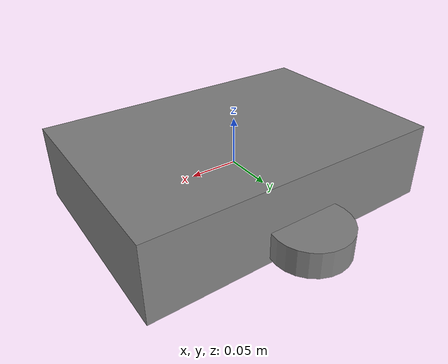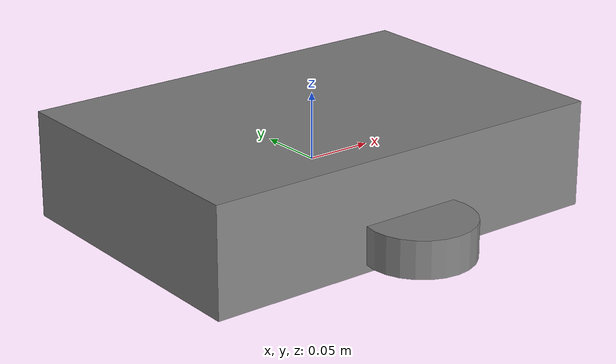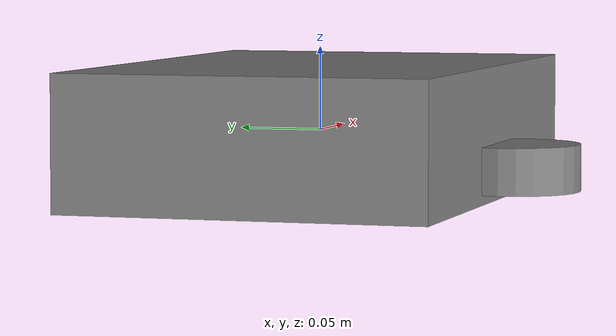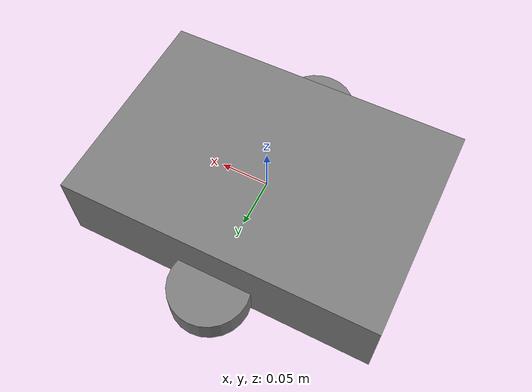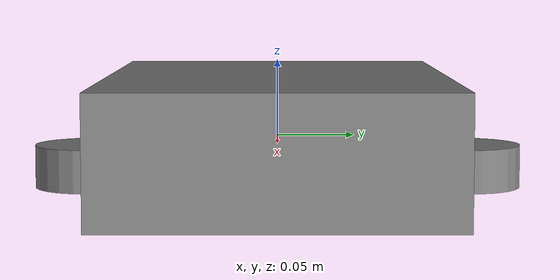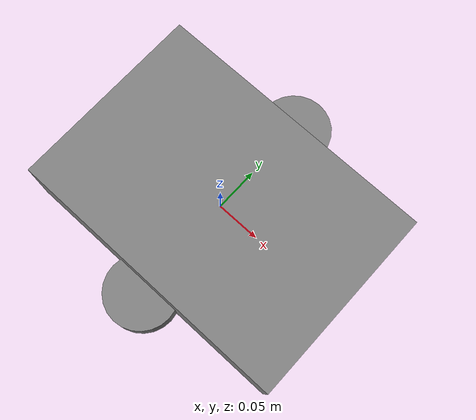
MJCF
<mujoco model="fixture_mjcf_rover">
  <option gravity="0 0 -9.80665" density="1.225"/>
  <worldbody>
    <body name="base" pos="0 0 0">
      <geom type="box" size="0.16 0.11 0.04" pos="0 0 0"/>
      <body name="left_wheel" pos="0 0.12 -0.02">
        <joint name="left_wheel_joint" type="hinge" axis="0 1 0" range="-3.14159 3.14159"/>
        <geom type="cylinder" size="0.04 0.014" pos="0 0 0"/>
      </body>
      <body name="right_wheel" pos="0 -0.12 -0.02">
        <joint name="right_wheel_joint" type="hinge" axis="0 1 0" range="-3.14159 3.14159"/>
        <geom type="cylinder" size="0.04 0.014" pos="0 0 0"/>
      </body>
    </body>
  </worldbody>
  <actuator>
    <motor name="left_wheel_motor" joint="left_wheel_joint" gear="1"/>
    <motor name="right_wheel_motor" joint="right_wheel_joint" gear="1"/>
  </actuator>
</mujoco>
